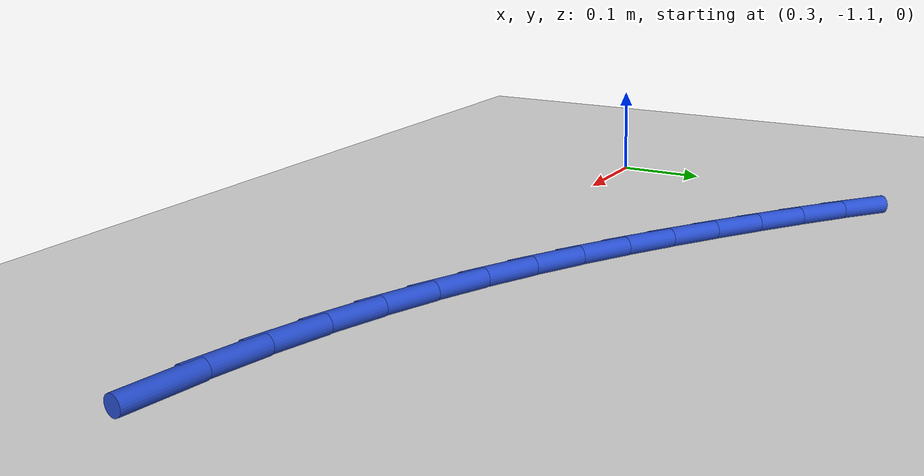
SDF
<sdf version="1.6">
 <world name="default">
  <model name="ground_plane">
   <static>1</static>
   <link name="link">
    <collision name="collision">
     <geometry><plane><normal>0 0 1</normal><size>100 100</size></plane></geometry>
     <surface><friction><ode><mu>100</mu><mu2>50</mu2></ode></friction></surface>
    </collision>
    <visual name="visual">
     <cast_shadows>0</cast_shadows>
     <geometry><plane><normal>0 0 1</normal><size>100 100</size></plane></geometry>
     <material>
      <script><uri>file://media/materials/scripts/gazebo.material</uri><name>Gazebo/WhiteGlow</name></script>
     </material>
    </visual>
   </link>
  </model>
  <model name="line">
   <link name="link_90">
    <pose>1.089968779992783 -1.1241962174015778 0.01 0 1.57 -0.15170382827010398</pose>
    <collision name="collision">
     <geometry><cylinder><radius>0.01</radius><length>0.08</length></cylinder></geometry>
    </collision>
    <visual name="visual">
     <material>
      <script><name>Gazebo/Blue</name><uri>file://media/materials/scripts/gazebo.material</uri></script>
     </material>
     <geometry><cylinder><radius>0.01</radius><length>0.08</length></cylinder></geometry>
    </visual>
   </link>
   <link name="link_91">
    <pose>1.0298204277684284 -1.1150008326185732 0.01 0 1.57 -0.20951015090392094</pose>
    <collision name="collision">
     <geometry><cylinder><radius>0.01</radius><length>0.08</length></cylinder></geometry>
    </collision>
    <visual name="visual">
     <material>
      <script><name>Gazebo/Blue</name><uri>file://media/materials/scripts/gazebo.material</uri></script>
     </material>
     <geometry><cylinder><radius>0.01</radius><length>0.08</length></cylinder></geometry>
    </visual>
   </link>
   <link name="link_92">
    <pose>0.971714330170628 -1.102645710133909 0.01 0 1.57 -0.26734580045965056</pose>
    <collision name="collision">
     <geometry><cylinder><radius>0.01</radius><length>0.08</length></cylinder></geometry>
    </collision>
    <visual name="visual">
     <material>
      <script><name>Gazebo/Blue</name><uri>file://media/materials/scripts/gazebo.material</uri></script>
     </material>
     <geometry><cylinder><radius>0.01</radius><length>0.08</length></cylinder></geometry>
    </visual>
   </link>
   <link name="link_93">
    <pose>0.9157294725754568 -1.08731130488159 0.01 0 1.57 -0.32334732170068353</pose>
    <collision name="collision">
     <geometry><cylinder><radius>0.01</radius><length>0.08</length></cylinder></geometry>
    </collision>
    <visual name="visual">
     <material>
      <script><name>Gazebo/Blue</name><uri>file://media/materials/scripts/gazebo.material</uri></script>
     </material>
     <geometry><cylinder><radius>0.01</radius><length>0.08</length></cylinder></geometry>
    </visual>
   </link>
   <link name="link_94">
    <pose>0.8616769358308536 -1.0691978422334942 0.01 0 1.57 -0.37667032064224354</pose>
    <collision name="collision">
     <geometry><cylinder><radius>0.01</radius><length>0.08</length></cylinder></geometry>
    </collision>
    <visual name="visual">
     <material>
      <script><name>Gazebo/Blue</name><uri>file://media/materials/scripts/gazebo.material</uri></script>
     </material>
     <geometry><cylinder><radius>0.01</radius><length>0.08</length></cylinder></geometry>
    </visual>
   </link>
   <link name="link_95">
    <pose>0.8093655600430193 -1.0485057129205766 0.01 0 1.57 -0.42657937882754743</pose>
    <collision name="collision">
     <geometry><cylinder><radius>0.01</radius><length>0.08</length></cylinder></geometry>
    </collision>
    <visual name="visual">
     <material>
      <script><name>Gazebo/Blue</name><uri>file://media/materials/scripts/gazebo.material</uri></script>
     </material>
     <geometry><cylinder><radius>0.01</radius><length>0.08</length></cylinder></geometry>
    </visual>
   </link>
   <link name="link_96">
    <pose>0.7586041853181544 -1.0254353076737925 0.01 0 1.57 -0.4724665479022832</pose>
    <collision name="collision">
     <geometry><cylinder><radius>0.01</radius><length>0.08</length></cylinder></geometry>
    </collision>
    <visual name="visual">
     <material>
      <script><name>Gazebo/Blue</name><uri>file://media/materials/scripts/gazebo.material</uri></script>
     </material>
     <geometry><cylinder><radius>0.01</radius><length>0.08</length></cylinder></geometry>
    </visual>
   </link>
   <link name="link_97">
    <pose>0.7092016517624614 -1.0001870172240968 0.01 0 1.57 -0.5138635971324097</pose>
    <collision name="collision">
     <geometry><cylinder><radius>0.01</radius><length>0.08</length></cylinder></geometry>
    </collision>
    <visual name="visual">
     <material>
      <script><name>Gazebo/Blue</name><uri>file://media/materials/scripts/gazebo.material</uri></script>
     </material>
     <geometry><cylinder><radius>0.01</radius><length>0.08</length></cylinder></geometry>
    </visual>
   </link>
   <link name="link_98">
    <pose>0.6609667994821412 -0.9729612323024447 0.01 0 1.57 -0.5504391074455209</pose>
    <collision name="collision">
     <geometry><cylinder><radius>0.01</radius><length>0.08</length></cylinder></geometry>
    </collision>
    <visual name="visual">
     <material>
      <script><name>Gazebo/Blue</name><uri>file://media/materials/scripts/gazebo.material</uri></script>
     </material>
     <geometry><cylinder><radius>0.01</radius><length>0.08</length></cylinder></geometry>
    </visual>
   </link>
   <link name="link_99">
    <pose>0.6137084685833949 -0.9439583436397911 0.01 0 1.57 -0.5819844033526939</pose>
    <collision name="collision">
     <geometry><cylinder><radius>0.01</radius><length>0.08</length></cylinder></geometry>
    </collision>
    <visual name="visual">
     <material>
      <script><name>Gazebo/Blue</name><uri>file://media/materials/scripts/gazebo.material</uri></script>
     </material>
     <geometry><cylinder><radius>0.01</radius><length>0.08</length></cylinder></geometry>
    </visual>
   </link>
   <link name="link_100">
    <pose>0.567235499172423 -0.9133787419670907 0.01 0 1.57 -0.6083930985097216</pose>
    <collision name="collision">
     <geometry><cylinder><radius>0.01</radius><length>0.08</length></cylinder></geometry>
    </collision>
    <visual name="visual">
     <material>
      <script><name>Gazebo/Blue</name><uri>file://media/materials/scripts/gazebo.material</uri></script>
     </material>
     <geometry><cylinder><radius>0.01</radius><length>0.08</length></cylinder></geometry>
    </visual>
   </link>
   <link name="link_101">
    <pose>0.5213567313554281 -0.8814228180152991 0.01 0 1.57 -0.629877871401835</pose>
    <collision name="collision">
     <geometry><cylinder><radius>0.01</radius><length>0.08</length></cylinder></geometry>
    </collision>
    <visual name="visual">
     <material>
      <script><name>Gazebo/Blue</name><uri>file://media/materials/scripts/gazebo.material</uri></script>
     </material>
     <geometry><cylinder><radius>0.01</radius><length>0.08</length></cylinder></geometry>
    </visual>
   </link>
   <link name="link_102">
    <pose>0.4758936766735294 -0.8482835384619445 0.01 0 1.57 -0.6512539183954429</pose>
    <collision name="collision">
     <geometry><cylinder><radius>0.01</radius><length>0.08</length></cylinder></geometry>
    </collision>
    <visual name="visual">
     <material>
      <script><name>Gazebo/Blue</name><uri>file://media/materials/scripts/gazebo.material</uri></script>
     </material>
     <geometry><cylinder><radius>0.01</radius><length>0.08</length></cylinder></geometry>
    </visual>
   </link>
   <link name="link_103">
    <pose>0.43092063283240556 -0.814005765369472 0.01 0 1.57 -0.677046504150713</pose>
    <collision name="collision">
     <geometry><cylinder><radius>0.01</radius><length>0.08</length></cylinder></geometry>
    </collision>
    <visual name="visual">
     <material>
      <script><name>Gazebo/Blue</name><uri>file://media/materials/scripts/gazebo.material</uri></script>
     </material>
     <geometry><cylinder><radius>0.01</radius><length>0.08</length></cylinder></geometry>
    </visual>
   </link>
   <link name="link_104">
    <pose>0.3867449078446277 -0.7784978426412995 0.01 0 1.57 -0.7076108029131213</pose>
    <collision name="collision">
     <geometry><cylinder><radius>0.01</radius><length>0.08</length></cylinder></geometry>
    </collision>
    <visual name="visual">
     <material>
      <script><name>Gazebo/Blue</name><uri>file://media/materials/scripts/gazebo.material</uri></script>
     </material>
     <geometry><cylinder><radius>0.01</radius><length>0.08</length></cylinder></geometry>
    </visual>
   </link>
  </model>
 </world>
</sdf>
